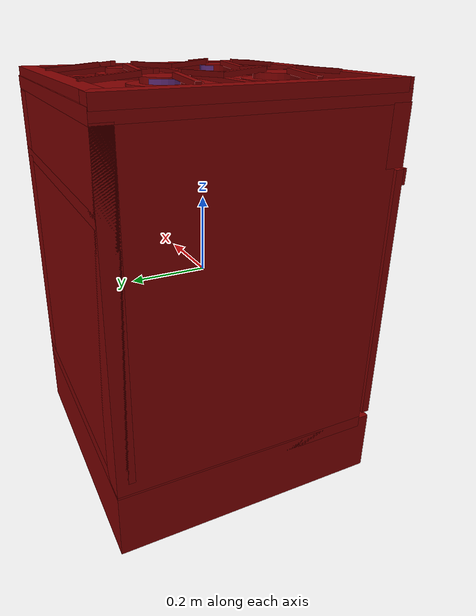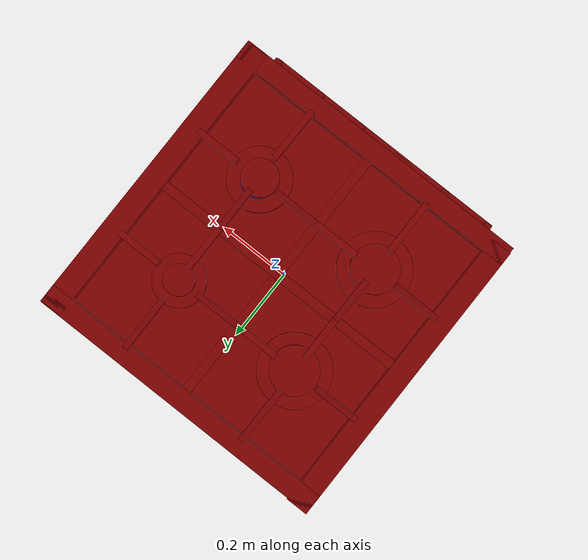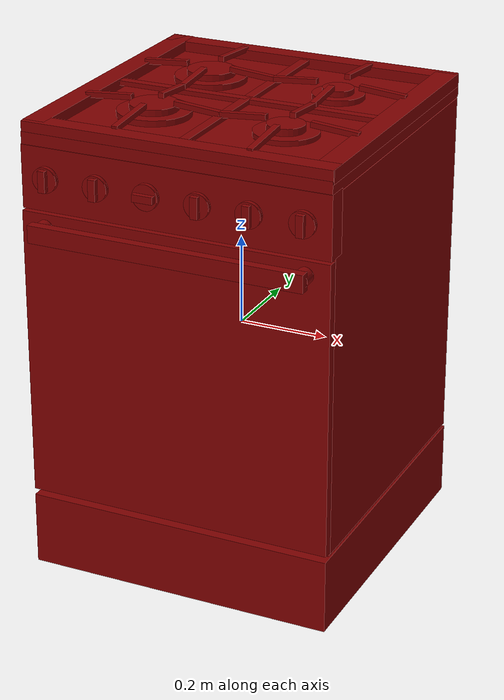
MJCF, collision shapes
<?xml version='1.0' encoding='UTF-8'?>
<mujoco model="model">
  <compiler angle="radian"/>
  <asset>
    <mesh file="visuals/knob_front_left.obj" name="knob_front_left_vis"/>
    <mesh file="visuals/knob_front_right.obj" name="knob_front_right_vis"/>
    <mesh file="visuals/knob_rear_left.obj" name="knob_rear_left_vis"/>
    <mesh file="visuals/knob_rear_right.obj" name="knob_rear_right_vis"/>
    <mesh file="visuals/Body001.obj" name="Body001_vis"/>
    <mesh file="visuals/Door001.obj" name="Door001_vis"/>
    <mesh file="visuals/Door001_Clear.obj" name="Door001_Clear_vis"/>
    <mesh file="visuals/Knob001.obj" name="Knob001_vis"/>
    <mesh file="visuals/Knob002.obj" name="Knob002_vis"/>
    <mesh file="visuals/Shelf001.obj" name="Shelf001_vis"/>
    <texture file="visuals/T_BC001.png" name="Body001_material" type="2d"/>
    <material name="Body001_material" rgba="1 1 1 1.0" texture="Body001_material" shininess="0.1" specular="5"/>
    <texture file="visuals/T_BC001.png" name="knob_front_left_material" type="2d"/>
    <material name="knob_front_left_material" rgba="1 1 1 1.0" texture="knob_front_left_material" shininess="0.1" specular="1"/>
    <texture file="visuals/T_BC001.png" name="knob_front_right_material" type="2d"/>
    <material name="knob_front_right_material" rgba="1 1 1 1.0" texture="knob_front_right_material" shininess="0.1" specular="1"/>
    <texture file="visuals/T_BC001.png" name="knob_rear_left_material" type="2d"/>
    <material name="knob_rear_left_material" rgba="1 1 1 1.0" texture="knob_rear_left_material" shininess="0.1" specular="1"/>
    <texture file="visuals/T_BC001.png" name="knob_rear_right_material" type="2d"/>
    <material name="knob_rear_right_material" rgba="1 1 1 1.0" texture="knob_rear_right_material" shininess="0.1" specular="1"/>
    <texture file="visuals/T_BC001.png" name="Door001_material" type="2d"/>
    <material name="Door001_material" rgba="1 1 1 1.0" texture="Door001_material" shininess="0.1" specular="1"/>
    <texture file="visuals/T_BC001.png" name="Door001_Clear_material" type="2d"/>
    <material name="Door001_Clear_material" rgba="1 1 1 0.5" texture="Door001_Clear_material" shininess="0.1" specular="1"/>
    <texture file="visuals/T_BC001.png" name="Knob001_material" type="2d"/>
    <material name="Knob001_material" rgba="1 1 1 1.0" texture="Knob001_material" shininess="0.1" specular="1"/>
    <texture file="visuals/T_BC001.png" name="Knob002_material" type="2d"/>
    <material name="Knob002_material" rgba="1 1 1 1.0" texture="Knob002_material" shininess="0.1" specular="1"/>
    <texture file="visuals/T_BC001.png" name="Shelf001_material" type="2d"/>
    <material name="Shelf001_material" rgba="1 1 1 1.0" texture="Shelf001_material" shininess="0.1" specular="1"/>
  </asset>
  <default>
    <default class="visual">
      <geom conaffinity="0" contype="0" group="1" type="mesh"/>
    </default>
    <default class="collision">
      <geom group="0" rgba="0.5 0 0 0.5"/>
    </default>
    <default class="spawn">
      <geom group="0" rgba="1 1 1 0.5" contype="0" conaffinity="0"/>
      <site group="0" rgba="1 1 1 0.5"/>
    </default>
    <default class="region">
      <geom group="1" conaffinity="0" contype="0" rgba="0 1 0 0"/>
    </default>
  </default>
  <worldbody>
    <body>
      <body name="object">
        <site type="cylinder" rgba="0.3 0.4 1 0.5" size="0.05156875029206276 0.006846410688012838" pos="-0.15075604617595673 0.15809021890163422 0.5050400495529175" name="burner_on_rear_left"/>
        <site type="cylinder" rgba="0.3 0.4 1 0.5" size="0.04857556149363518 0.006662954576313496" pos="-0.150647833943367 -0.10583272576332092 0.505685031414032" name="burner_on_front_left"/>
        <site type="cylinder" rgba="0.3 0.4 1 0.5" size="0.03897705674171448 0.006735257338732481" pos="0.15346604585647583 -0.10587043315172195 0.5053409934043884" name="burner_on_front_right"/>
        <site type="cylinder" rgba="0.3 0.4 1 0.5" size="0.030003877356648445 0.006784995552152395" pos="0.15314030647277832 0.1579144150018692 0.5058147311210632" name="burner_on_rear_right"/>
        <geom mesh="Body001_vis" type="mesh" solimp="0.998 0.998 0.001" solref="0.001 1" density="100" friction="0.95 0.3 0.1" class="visual" material="Body001_material"/>
        <geom class="collision" type="box" pos="-1.594889909029007e-08 -0.29763758182525635 0.39089781045913696" size="0.34916573762893677 0.024249166250228882 0.06979788094758987" quat="1.0 0.0 0.0 0.0"/>
        <geom class="collision" type="box" pos="0.28373390436172485 0.0533357597887516 -0.038145195692777634" size="0.01380211766809225 0.26400789618492126 0.011560178361833096" quat="1.0 0.0 0.0 0.0"/>
        <geom class="collision" type="box" pos="-0.2862478196620941 0.05319228023290634 -0.037999607622623444" size="0.013049907051026821 0.26415136456489563 0.01141459122300148" quat="1.0 0.0 0.0 0.0"/>
        <geom class="collision" type="box" pos="-0.0023568759206682444 0.35140305757522583 0.07148700207471848" size="0.3467247784137726 0.022162484005093575 0.39027759432792664" quat="1.0 0.0 0.0 0.0"/>
        <geom class="collision" type="box" pos="-0.0003473036631476134 0.038771625608205795 0.289108008146286" size="0.3450506031513214 0.33479395508766174 0.014134719036519527" quat="1.0 0.0 0.0 0.0"/>
        <geom class="collision" type="cylinder" pos="0.15324056148529053 -0.11007839441299438 0.5054845213890076" size="0.04124581813812256 0.008954365737736225" quat="1.0 0.0 0.0 0.0"/>
        <geom class="collision" type="box" pos="-0.0023568759206682444 0.03796178475022316 -0.34920012950897217" size="0.3467247784137726 0.335603803396225 0.03138244152069092" quat="1.0 0.0 0.0 0.0"/>
        <geom class="collision" type="cylinder" pos="0.15324056148529053 0.15892356634140015 0.5054845213890076" size="0.03428720310330391 0.007443667855113745" quat="1.0 0.0 0.0 0.0"/>
        <geom class="collision" type="cylinder" pos="0.15324056148529053 -0.10840077698230743 0.48885276913642883" size="0.07045555114746094 0.009905361570417881" quat="1.0 0.0 0.0 0.0"/>
        <geom class="collision" type="cylinder" pos="0.15324056148529053 0.16028746962547302 0.492008239030838" size="0.05751175805926323 0.008085590787231922" quat="1.0 0.0 0.0 0.0"/>
        <geom class="collision" type="cylinder" pos="-0.14906418323516846 0.1573500782251358 0.507665753364563" size="0.05308040603995323 0.007462585810571909" quat="1.0 0.0 0.0 0.0"/>
        <geom class="collision" type="cylinder" pos="-0.15015529096126556 -0.1088903471827507 0.507665753364563" size="0.05308040603995323 0.007462585810571909" quat="1.0 0.0 0.0 0.0"/>
        <geom class="collision" type="cylinder" pos="-0.15015529096126556 0.15811385214328766 0.489694207906723" size="0.08044295012950897 0.011309492401778698" quat="1.0 0.0 0.0 0.0"/>
        <geom class="collision" type="cylinder" pos="-0.15015529096126556 -0.1088903471827507 0.489694207906723" size="0.08044295012950897 0.011309492401778698" quat="1.0 0.0 0.0 0.0"/>
        <geom class="collision" type="box" pos="-0.0498778261244297 -0.10651670396327972 0.515122652053833" size="0.05274287611246109 0.006753944791853428 0.005913717206567526" quat="0.9991114139556885 -7.801599078268101e-16 0.04214746505022049 5.6628746136766495e-09"/>
        <geom class="collision" type="box" pos="-0.25739291310310364 -0.10651670396327972 0.5152696371078491" size="0.05487499758601189 0.006753944791853428 0.005913717206567526" quat="1.2662251265282976e-06 -0.9991114139556885 -4.775272088863858e-08 -0.04214746505022049"/>
        <geom class="collision" type="box" pos="-0.1505412608385086 -0.025377485901117325 0.5162690877914429" size="0.05274287611246109 0.006753944791853428 0.005913717206567526" quat="0.029803551733493805 0.7064785361289978 -0.7064783573150635 0.02980184741318226"/>
        <geom class="collision" type="box" pos="0.311211496591568 0.038002416491508484 0.052152544260025024" size="0.0355842299759388 0.33556315302848816 0.40081486105918884" quat="1.0 0.0 0.0 0.0"/>
        <geom class="collision" type="box" pos="-0.15032383799552917 -0.21832793951034546 0.5153112411499023" size="0.06434283405542374 0.006753944791853428 0.005913717206567526" quat="0.029803572222590446 -0.7064784169197083 -0.706478476524353 -0.029801828786730766"/>
        <geom class="collision" type="box" pos="-0.15107031166553497 0.2739361822605133 0.5153112411499023" size="0.06434283405542374 0.006753944791853428 0.005913717206567526" quat="0.02980181574821472 0.7064783573150635 -0.7064785361289978 0.029803583398461342"/>
        <geom class="collision" type="box" pos="-0.15021932125091553 0.07278509438037872 0.5162690877914429" size="0.05274287611246109 0.006753944791853428 0.005913717206567526" quat="0.029803572222590446 -0.7064784169197083 -0.706478476524353 -0.029801828786730766"/>
        <geom class="collision" type="box" pos="-0.04886031895875931 0.15800081193447113 0.5150899887084961" size="0.05274287611246109 0.006753944791853428 0.005913717206567526" quat="0.042147502303123474 1.2751686995216005e-07 -0.9991114139556885 1.2378882274788339e-06"/>
        <geom class="collision" type="box" pos="-0.2580749988555908 0.15800075232982635 0.515122652053833" size="0.05274287611246109 0.006753944791853428 0.005913717206567526" quat="7.54207150066577e-08 0.04214753955602646 2.9427369430123917e-09 -0.9991114139556885"/>
        <geom class="collision" type="box" pos="0.05263424292206764 0.15800075232982635 0.515122652053833" size="0.05274287611246109 0.006753944791853428 0.005913717206567526" quat="7.54207150066577e-08 0.04214753955602646 2.9427369430123917e-09 -0.9991114139556885"/>
        <geom class="collision" type="box" pos="0.2568358778953552 0.15800081193447113 0.5150899887084961" size="0.05274287611246109 0.006753944791853428 0.005913717206567526" quat="0.042147502303123474 1.2751686995216005e-07 -0.9991114139556885 1.2378882274788339e-06"/>
        <geom class="collision" type="box" pos="0.1528499275445938 0.07278509438037872 0.5162690877914429" size="0.05274287611246109 0.006753944791853428 0.005913717206567526" quat="0.029803572222590446 -0.7064784169197083 -0.706478476524353 -0.029801828786730766"/>
        <geom class="collision" type="box" pos="0.15259134769439697 0.2739361822605133 0.5153112411499023" size="0.06434283405542374 0.006753944791853428 0.005913717206567526" quat="0.02980181574821472 0.7064783573150635 -0.7064785361289978 0.029803583398461342"/>
        <geom class="collision" type="box" pos="0.15419085323810577 -0.2206496298313141 0.5141284465789795" size="0.06434283405542374 0.006753944791853428 0.005913717206567526" quat="0.029803572222590446 -0.7064784169197083 -0.706478476524353 -0.029801828786730766"/>
        <geom class="collision" type="box" pos="-0.3134974241256714 0.038002416491508484 0.05432949587702751" size="0.0355842299759388 0.33556315302848816 0.4029918313026428" quat="1.0 0.0 0.0 0.0"/>
        <geom class="collision" type="box" pos="0.15291723608970642 -0.025377485901117325 0.5162690877914429" size="0.05274287611246109 0.006753944791853428 0.005913717206567526" quat="0.029803551733493805 0.7064785361289978 -0.7064783573150635 0.02980184741318226"/>
        <geom class="collision" type="box" pos="0.05551920086145401 -0.10665102303028107 0.5150899887084961" size="0.05274287611246109 0.006753944791853428 0.005913717206567526" quat="1.2662251265282976e-06 -0.9991114139556885 -4.775272088863858e-08 -0.04214746505022049"/>
        <geom class="collision" type="box" pos="0.26083141565322876 -0.10665102303028107 0.515122652053833" size="0.05274287611246109 0.006753944791853428 0.005913717206567526" quat="0.9991114139556885 -7.801599078268101e-16 0.04214746505022049 5.6628746136766495e-09"/>
        <geom class="collision" type="box" pos="0.0005319375777617097 0.024280473589897156 0.5018988251686096" size="0.31023797392845154 0.01045481488108635 0.005232008174061775" quat="1.0 0.0 0.0 0.0"/>
        <geom class="collision" type="box" pos="0.0005319276824593544 0.02428048849105835 0.5018988251686096" size="0.010454647243022919 0.3102380335330963 0.0052320100367069244" quat="1.0 0.0 0.0 0.0"/>
        <geom class="collision" type="box" pos="0.3245171308517456 0.025490012019872665 0.49558454751968384" size="0.025171110406517982 0.34323346614837646 0.014915659092366695" quat="1.0 0.0 0.0 0.0"/>
        <geom class="collision" type="box" pos="-0.32470470666885376 0.03215639293193817 0.49558454751968384" size="0.024667173624038696 0.3403567373752594 0.014915662817656994" quat="1.0 0.0 0.0 0.0"/>
        <geom class="collision" type="box" pos="0.0005319276824593544 0.34866371750831604 0.49558454751968384" size="0.34829312562942505 0.02167048677802086 0.014915666542947292" quat="1.0 0.0 0.0 0.0"/>
        <geom class="collision" type="box" pos="0.0005319276824593544 -0.29849153757095337 0.49558454751968384" size="0.3482932448387146 0.021453585475683212 0.01491567026823759" quat="1.0 0.0 0.0 0.0"/>
        <geom class="collision" type="box" pos="-0.0003375217493157834 0.026780445128679276 0.4718433618545532" size="0.34829336404800415 0.34678512811660767 0.01574789546430111" quat="1.0 0.0 0.0 0.0"/>
        <geom class="collision" type="box" pos="-0.00021924334578216076 0.023396827280521393 -0.43770742416381836" size="0.3488624393939972 0.35016876459121704 0.08330636471509933" quat="1.0 0.0 0.0 0.0"/>
        <body name="knob_front_left">
          <joint axis="0.0 -1.0 0.0" pos="-0.2887952923774719 -0.3348844051361084 0.39446955919265747" limited="true" name="knob_front_left_joint" range="0.0 3.141592653589793" type="hinge" damping="0.05" armature="0.001"/>
          <geom mesh="knob_front_left_vis" type="mesh" solimp="0.998 0.998 0.001" solref="0.001 1" density="100" friction="0.95 0.3 0.1" class="visual" material="knob_front_left_material"/>
          <geom class="collision" type="cylinder" pos="-0.2887952923774719 -0.33075785636901855 0.39446955919265747" size="0.027934346348047256 0.005050304811447859" quat="0.7071068286895752 0.7071067690849304 0.0 0.0"/>
          <geom class="collision" type="box" pos="-0.2887952923774719 -0.3411925435066223 0.39446955919265747" size="0.00801808014512062 0.00690996740013361 0.02339768409729004" quat="1.0 0.0 0.0 0.0" name="knob_front_left_main"/>
        </body>
        <body name="knob_front_right">
          <joint axis="0.0 -1.0 0.0" pos="0.29012277722358704 -0.3348844051361084 0.39446955919265747" limited="true" name="knob_front_right_joint" range="0.0 3.141592653589793" type="hinge" damping="0.05" armature="0.001"/>
          <geom mesh="knob_front_right_vis" type="mesh" solimp="0.998 0.998 0.001" solref="0.001 1" density="100" friction="0.95 0.3 0.1" class="visual" material="knob_front_right_material"/>
          <geom class="collision" type="box" pos="0.29012277722358704 -0.3411925435066223 0.39446955919265747" size="0.00801808014512062 0.00690996740013361 0.02339768409729004" quat="1.0 0.0 0.0 0.0" name="knob_front_right_main"/>
          <geom class="collision" type="cylinder" pos="0.2901228070259094 -0.33075785636901855 0.39446955919265747" size="0.028536217287182808 0.005134792532771826" quat="0.7071068286895752 0.7071067690849304 0.0 0.0"/>
        </body>
        <body name="knob_rear_left">
          <joint axis="0.0 -1.0 0.0" pos="-0.1715051829814911 -0.3348844051361084 0.39446955919265747" limited="true" name="knob_rear_left_joint" range="0.0 3.141592653589793" type="hinge" damping="0.05" armature="0.001"/>
          <geom mesh="knob_rear_left_vis" type="mesh" solimp="0.998 0.998 0.001" solref="0.001 1" density="100" friction="0.95 0.3 0.1" class="visual" material="knob_rear_left_material"/>
          <geom class="collision" type="cylinder" pos="-0.1715051829814911 -0.33075785636901855 0.39446955919265747" size="0.027900373563170433 0.005045535508543253" quat="0.7071068286895752 0.7071067690849304 0.0 0.0"/>
          <geom class="collision" type="box" pos="-0.1715051829814911 -0.3411925435066223 0.39446955919265747" size="0.00801808014512062 0.00690996740013361 0.02339768409729004" quat="1.0 0.0 0.0 0.0" name="knob_rear_left_main"/>
        </body>
        <body name="knob_rear_right">
          <joint axis="0.0 -1.0 0.0" pos="0.17350420355796814 -0.3348844051361084 0.39446955919265747" limited="true" name="knob_rear_right_joint" range="0.0 3.141592653589793" type="hinge" damping="0.05" armature="0.001"/>
          <geom mesh="knob_rear_right_vis" type="mesh" solimp="0.998 0.998 0.001" solref="0.001 1" density="100" friction="0.95 0.3 0.1" class="visual" material="knob_rear_right_material"/>
          <geom class="collision" type="cylinder" pos="0.17350420355796814 -0.33075785636901855 0.39446955919265747" size="0.028257086873054504 0.005095609929412603" quat="0.7071068286895752 0.7071067690849304 0.0 0.0"/>
          <geom class="collision" type="box" pos="0.17350420355796814 -0.3411925435066223 0.39446955919265747" size="0.00801808014512062 0.00690996740013361 0.02339768409729004" quat="1.0 0.0 0.0 0.0" name="knob_rear_right_main"/>
        </body>
        <body name="Door001">
          <joint axis="1.0 0.0 0.0" pos="9.559883551446546e-09 -0.3246775269508362 -0.33974993228912354" limited="true" name="Door001_joint" range="0.0 1.5707963267948966" type="hinge" damping="1" frictionloss="1" armature=".01" stiffness="0.05"/>
          <geom mesh="Door001_vis" type="mesh" solimp="0.998 0.998 0.001" solref="0.001 1" density="100" friction="0.95 0.3 0.1" class="visual" material="Door001_material"/>
          <geom class="collision" type="box" pos="0.0 -0.31615501642227173 -0.01153815072029829" size="0.34916576743125916 0.010176879353821278 0.32804685831069946" quat="1.0 0.0 0.0 0.0"/>
          <geom class="collision" type="box" pos="-0.0002522036083973944 -0.3626614511013031 0.2860453128814697" size="0.31082525849342346 0.01096201129257679 0.019551655277609825" quat="1.0 0.0 0.0 0.0"/>
          <geom class="collision" type="cylinder" pos="-0.29542088508605957 -0.3301635980606079 0.2858274579048157" size="0.018252719193696976 0.02802138589322567" quat="0.7071068286895752 -0.7071067690849304 1.5700924318127872e-16 -5.9269340452702814e-24"/>
          <geom class="collision" type="cylinder" pos="0.29499393701553345 -0.3300791382789612 0.2858274579048157" size="0.018252719193696976 0.028105827048420906" quat="0.7071068286895752 -0.7071067690849304 1.5700924318127872e-16 -5.9269340452702814e-24"/>
          <body name="Door001_Clear">
            <geom mesh="Door001_Clear_vis" type="mesh" solimp="0.998 0.998 0.001" solref="0.001 1" density="100" friction="0.95 0.3 0.1" class="visual" material="Door001_Clear_material"/>
            <geom class="collision" type="box" pos="-0.0022814508993178606 -0.31509557366371155 0.04257676750421524" size="0.31797417998313904 0.010229974053800106 0.23963330686092377" quat="1.0 0.0 0.0 0.0"/>
          </body>
        </body>
        <body name="Knob001">
          <joint axis="0.0 1.0 0.0" pos="-0.05584859102964401 -0.3348844051361084 0.3944695293903351" limited="true" name="Knob001_joint" range="0.0 5.235987755982989" type="hinge" damping="0.05" armature="0.001"/>
          <geom mesh="Knob001_vis" type="mesh" solimp="0.998 0.998 0.001" solref="0.001 1" density="100" friction="0.95 0.3 0.1" class="visual" material="Knob001_material"/>
          <geom class="collision" type="cylinder" pos="-0.05584859102964401 -0.33075785636901855 0.3944695293903351" size="0.02867097407579422 0.005113132763653994" quat="0.7071068286895752 0.7071067690849304 0.0 0.0"/>
          <geom class="collision" type="box" pos="-0.05584859102964401 -0.3411925435066223 0.3944695293903351" size="0.00801808014512062 0.00690996740013361 0.02339768409729004" quat="0.7071068286895752 -4.750302551315144e-08 -0.7071067094802856 -4.7503014855010406e-08"/>
        </body>
        <body name="Knob002">
          <joint axis="0.0 1.0 0.0" pos="0.05980800837278366 -0.3348844051361084 0.39446955919265747" limited="true" name="Knob002_joint" range="0.0 5.567600313861911" type="hinge" damping="0.05" armature="0.001"/>
          <geom mesh="Knob002_vis" type="mesh" solimp="0.998 0.998 0.001" solref="0.001 1" density="100" friction="0.95 0.3 0.1" class="visual" material="Knob002_material"/>
          <geom class="collision" type="cylinder" pos="0.05980800837278366 -0.33075785636901855 0.39446955919265747" size="0.028190623968839645 0.004858045838773251" quat="0.7071068286895752 0.7071067690849304 0.0 0.0"/>
          <geom class="collision" type="box" pos="0.05980800837278366 -0.3411925435066223 0.39446955919265747" size="0.00801808014512062 0.00690996740013361 0.02339768409729004" quat="1.0 0.0 0.0 0.0"/>
        </body>
        <body name="Shelf001">
          <joint axis="0.0 -1.0 0.0" pos="-0.0013320501893758774 0.05472371354699135 -0.022496171295642853" limited="true" name="Shelf001_joint" range="0.0 0.3" type="slide" damping="1" frictionloss="1" armature=".01" stiffness="0.05"/>
          <geom mesh="Shelf001_vis" type="mesh" solimp="0.998 0.998 0.001" solref="0.001 1" density="100" friction="0.95 0.3 0.1" class="visual" material="Shelf001_material"/>
          <geom class="collision" type="box" pos="-0.0013610527385026217 0.05342525616288185 -0.022122923284769058" size="0.27556294202804565 0.25775256752967834 0.0022828688379377127" quat="1.0 0.0 0.0 0.0"/>
        </body>
        <site name="burner_rear_left_place_site" type="cylinder" rgba="0.3 0.4 1 0" size="0.05156875029206276 0.006846410688012838" pos="-0.15075604617595673 0.15809021890163422 0.5050400495529175"/>
        <site name="burner_front_left_place_site" type="cylinder" rgba="0.3 0.4 1 0" size="0.04857556149363518 0.006662954576313496" pos="-0.150647833943367 -0.10583272576332092 0.505685031414032"/>
        <site name="burner_front_right_place_site" type="cylinder" rgba="0.3 0.4 1 0" size="0.03897705674171448 0.006735257338732481" pos="0.15346604585647583 -0.10587043315172195 0.5053409934043884"/>
        <site name="burner_rear_right_place_site" type="cylinder" rgba="0.3 0.4 1 0" size="0.030003877356648445 0.006784995552152395" pos="0.15314030647277832 0.1579144150018692 0.5058147311210632"/>
        <geom class="region" name="reg_main" type="box" pos="-1.3466770809600348e-08 0.02339681051671505 -0.029336271807551384" size="0.34916576743125916 0.35016873478889465 0.49167752265930176"/>
        <geom class="region" name="reg_int" type="box" pos="-0.0010534822940826416 0.015918493270874023 -0.022343263030052185" size="0.282517671585083 0.314059317111969 0.2975348085165024"/>
      </body>
    </body>
  </worldbody>
  <actuator>
    <motor name="knob_front_left_joint_actuator" joint="knob_front_left_joint" gear="10"/>
    <motor name="knob_front_right_joint_actuator" joint="knob_front_right_joint" gear="10"/>
    <motor name="knob_rear_left_joint_actuator" joint="knob_rear_left_joint" gear="10"/>
    <motor name="knob_rear_right_joint_actuator" joint="knob_rear_right_joint" gear="10"/>
    <motor name="Door001_joint_actuator" joint="Door001_joint" gear="50"/>
    <motor name="Knob001_joint_actuator" joint="Knob001_joint" gear="50"/>
    <motor name="Knob002_joint_actuator" joint="Knob002_joint" gear="50"/>
    <motor name="Shelf001_joint_actuator" joint="Shelf001_joint" gear="50"/>
  </actuator>
</mujoco>
